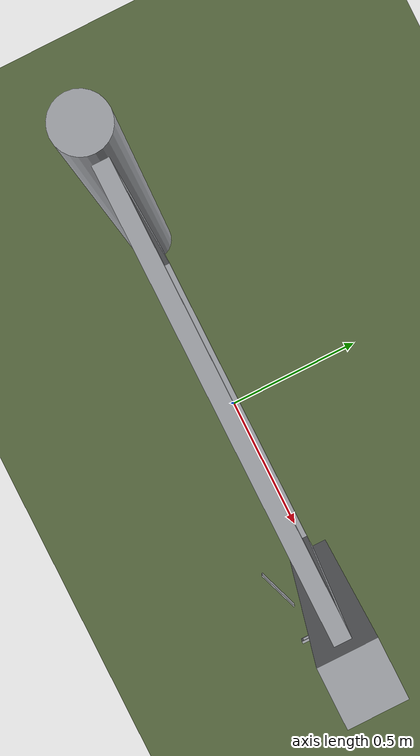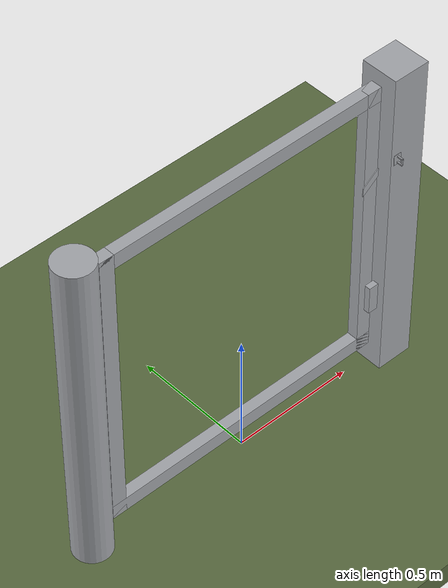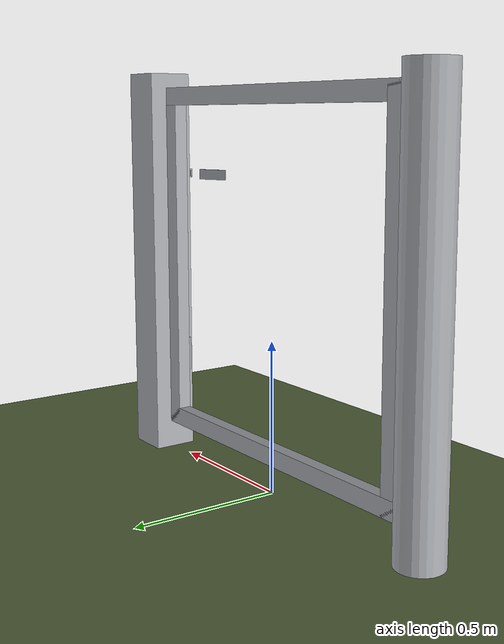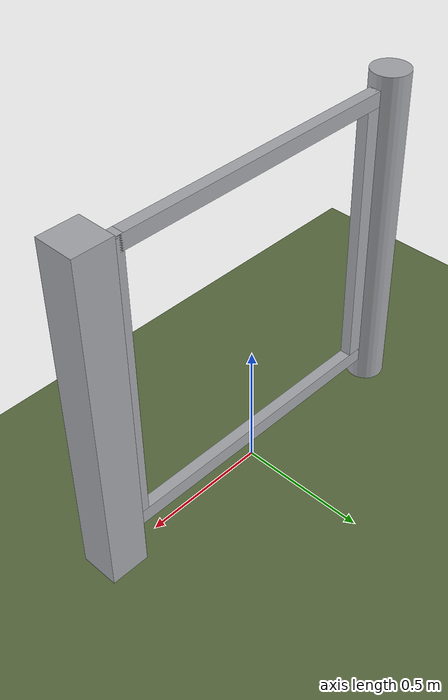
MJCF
<?xml version="1.0" ?>
<mujoco model="db0478_gate_swing_minimal">
  <compiler angle="radian" meshdir="../../hardware" texturedir="../../textures" autolimits="true" inertiafromgeom="false"/>
  <option timestep="0.002" integrator="implicitfast" cone="elliptic" impratio="10" noslip_iterations="3">
    <flag multiccd="enable"/>
  </option>
  <size memory="16M"/>
  <default>
    <geom condim="4" solref="0.005 1" solimp="0.95 0.99 0.001"/>
    <joint solreflimit="0.005 1" solimplimit="0.95 0.99 0.001"/>
    <tendon solreflimit="0.005 1"/>
    <equality solref="0.002 1"/>
  </default>
  <visual>
    <headlight ambient="0.4 0.4 0.4" diffuse="0.7 0.7 0.7" specular="0.2 0.2 0.2"/>
    <quality shadowsize="4096"/>
    <map znear="0.01" zfar="60"/>
  </visual>
  <asset>
    <material name="mat_floor" rgba="0.35 0.42 0.25 1" specular="0.2" shininess="0.15" reflectance="0"/>
    <material name="mat_wall" rgba="0.78 0.76 0.7 1" specular="0.2" shininess="0.1" reflectance="0"/>
    <material name="mat_leaf" rgba="0.65 0.66 0.68 1" specular="0.74" shininess="0.5" reflectance="0.36"/>
    <material name="mat_hinge" rgba="0.65 0.66 0.68 1" specular="0.74" shininess="0.5" reflectance="0.36"/>
    <material name="mat_op_steel_galvanized" rgba="0.65 0.66 0.68 1" specular="0.74" shininess="0.5" reflectance="0.36"/>
    <material name="mat_padlock" rgba="0.85 0.66 0.3 1" specular="0.8" shininess="0.75" reflectance="0.4"/>
    <material name="mat_frame" rgba="0.65 0.66 0.68 1" specular="0.74" shininess="0.5" reflectance="0.36"/>
    <material name="mat_bumper_stop" rgba="0.08 0.08 0.08 1" specular="0.2" shininess="0.1" reflectance="0"/>
    <material name="mat_stop_base" rgba="0.9 0.9 0.92 1" specular="0.8" shininess="0.9" reflectance="0.4"/>
    <material name="mat_fence" rgba="0.7 0.45 0.32 1" specular="0.2" shininess="0.4" reflectance="0"/>
    <texture name="skybox" type="skybox" builtin="gradient" rgb1="0.6 0.7 0.85" rgb2="0.9 0.92 0.95" width="256" height="256"/>
  </asset>
  <worldbody>
    <light name="sun" pos="1.5 -2.5 4" dir="-0.3 0.5 -0.8" directional="true" diffuse="0.8 0.8 0.8" specular="0.3 0.3 0.3" castshadow="true"/>
    <light name="fill" pos="-1.5 2.5 3" dir="0.3 -0.5 -0.7" directional="true" diffuse="0.35 0.35 0.4" castshadow="false"/>
    <camera name="robot_view" pos="0 -1.875 1.135" xyaxes="1 0 0 0 0.26963 0.962964" fovy="52"/>
    <camera name="far_view" pos="0 1.875 1.135" xyaxes="-1 0 0 0 -0.26963 0.962964" fovy="52"/>
    <camera name="iso" pos="1.425 -1.575 1.435" xyaxes="0.741536 0.670913 0 -0.242917 0.268487 0.932151" fovy="46"/>
    <camera name="detail_handle" pos="0.816 -0.889 1.28" xyaxes="0.97561 0.219512 0 -0.070934 0.315262 0.94635" fovy="38"/>
    <geom name="floor" type="box" size="6 6 0.05" pos="0 0 -0.05" material="mat_floor" group="0" contype="1" conaffinity="1" friction="0.8 0.005 0.0001" density="2400"/>
    <geom name="leaf_staple_leg_n" type="box" size="0.003 0.0025 0.013" pos="0.634 -0.088 0.9875" quat="0.707107 0.707107 0 0" material="mat_op_steel_galvanized" group="0" contype="1" conaffinity="1" friction="0.6 0.005 0.0001" density="7800"/>
    <geom name="leaf_staple_leg_p" type="box" size="0.003 0.0025 0.013" pos="0.634 -0.088 1.0125" quat="0.707107 0.707107 0 0" material="mat_op_steel_galvanized" group="0" contype="1" conaffinity="1" friction="0.6 0.005 0.0001" density="7800"/>
    <geom name="leaf_staple_bridge" type="box" size="0.003 0.015 0.0025" pos="0.634 -0.0985 1" quat="0.707107 0.707107 0 0" material="mat_op_steel_galvanized" group="0" contype="1" conaffinity="1" friction="0.6 0.005 0.0001" density="7800"/>
    <geom name="leaf_staple_base" type="box" size="0.016 0.021 0.001" pos="0.634 -0.076 1" quat="0.707107 0.707107 0 0" material="mat_op_steel_galvanized" group="1" contype="0" conaffinity="0" density="7800"/>
    <geom name="post_hinge" type="cylinder" size="0.075 0.675" pos="-0.681 0 0.675" material="mat_frame" group="0" contype="1" conaffinity="1" friction="0.6 0.005 0.0001" density="800"/>
    <geom name="post_latch" type="box" size="0.075 0.075 0.675" pos="0.681 0 0.675" material="mat_frame" group="0" contype="1" conaffinity="1" friction="0.6 0.005 0.0001" density="800"/>
    <geom name="gate_stop" type="box" size="0.02 0.012 0.06" pos="0.586 -0.0345 0.35" material="mat_frame" group="0" contype="1" conaffinity="1" friction="0.6 0.005 0.0001" density="800"/>
    <site name="approach_point" pos="0 -1.5 0" quat="1 0 0 0" size="0.05" rgba="0.2 0.9 0.2 0.5" group="4"/>
    <site name="goal_point" pos="0 1.5 0" quat="1 0 0 0" size="0.05" rgba="0.2 0.9 0.2 0.5" group="4"/>
    <site name="door_plane_center" pos="0 0 0.61" quat="1 0 0 0" size="0.02" rgba="0.2 0.9 0.2 0.5" group="4"/>
    <body name="leaf" pos="-0.606 0 0">
      <inertial pos="0.603 0 0.7" mass="20.49556" quat="0 0 0.707107 0.707107" diaginertia="2.464369811 2.464369811 4.921822371"/>
      <joint name="leaf_hinge" type="hinge" axis="0 0 1" pos="0.003 0.05 0" limited="true" range="0 1.745329" damping="0.499391" frictionloss="1.382494" armature="0.02"/>
      <geom name="leaf_slab_col" type="box" size="0.6 0.0225 0.6" pos="0.603 0 0.7" material="mat_leaf" group="3" contype="1" conaffinity="1" rgba="0.8 0.3 0.3 0.25" friction="0.42 0.005 0.0001" density="1"/>
      <geom name="leaf_rail_b" type="box" size="0.6 0.0225 0.03" pos="0.603 0 0.13" material="mat_leaf" group="1" contype="0" conaffinity="0" density="1"/>
      <geom name="leaf_rail_t" type="box" size="0.6 0.0225 0.03" pos="0.603 0 1.27" material="mat_leaf" group="1" contype="0" conaffinity="0" density="1"/>
      <geom name="leaf_stile_h" type="box" size="0.03 0.0225 0.6" pos="0.033 0 0.7" material="mat_leaf" group="1" contype="0" conaffinity="0" density="1"/>
      <geom name="leaf_stile_l" type="box" size="0.03 0.0225 0.6" pos="1.173 0 0.7" material="mat_leaf" group="1" contype="0" conaffinity="0" density="1"/>
      <site name="leaf_edge_mid" pos="1.203 0 0.6" quat="1 0 0 0" size="0.02" rgba="0.2 0.9 0.2 0.5" group="4"/>
      <body name="leaf_hasp" pos="1.148 -0.079 1">
        <inertial pos="-0.054209 -0.017681 0" mass="0.093366" quat="0.696818 -0.696818 -0.120185 0.120185" diaginertia="0.000009601 0.000101185 0.000110646"/>
        <joint name="leaf_hasp_hinge" type="hinge" axis="0 0 -1" limited="true" range="0 2.9" damping="0.02" frictionloss="0.05" armature="0.005" ref="2.8"/>
        <geom name="leaf_hasp_strap" type="box" size="0.057 0.0175 0.0015" pos="-0.054209 -0.017681 0" quat="0.120185 0.120185 -0.696818 -0.696818" material="mat_op_steel_galvanized" group="0" contype="1" conaffinity="1" friction="0.6 0.005 0.0001" density="7800"/>
        <site name="leaf_hasp_grip" pos="-0.091919 -0.022067 0" quat="0.169967 0 0 -0.98545" size="0.01" rgba="0.2 0.9 0.2 0.5" group="4"/>
      </body>
    </body>
  </worldbody>
  <sensor>
    <jointpos name="leaf_hinge_pos" joint="leaf_hinge"/>
    <jointvel name="leaf_hinge_vel" joint="leaf_hinge"/>
    <jointpos name="leaf_hasp_hinge_pos" joint="leaf_hasp_hinge"/>
    <jointvel name="leaf_hasp_hinge_vel" joint="leaf_hasp_hinge"/>
  </sensor>
</mujoco>
